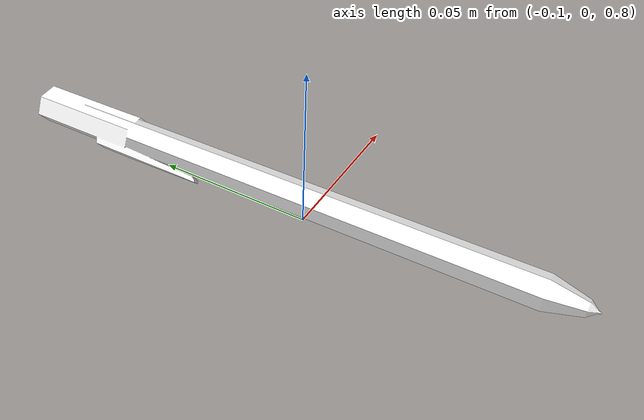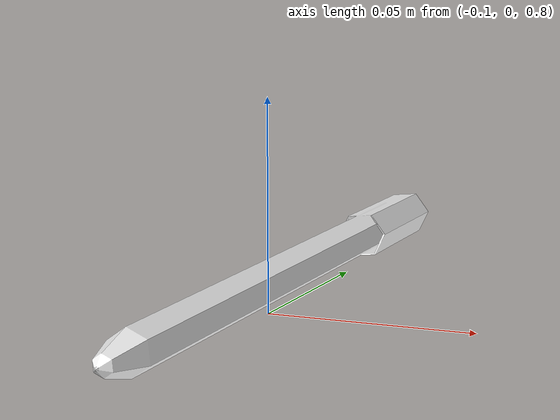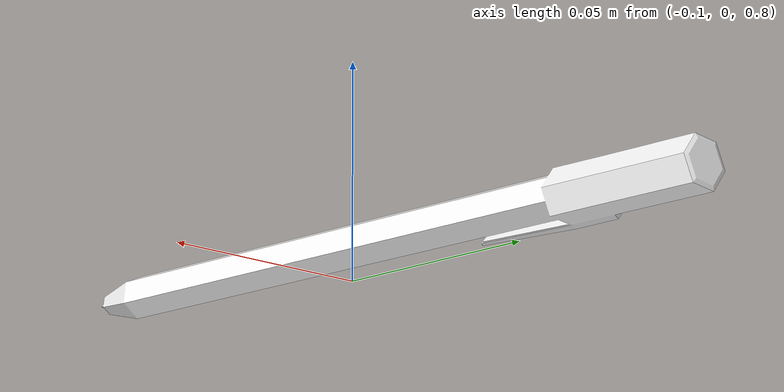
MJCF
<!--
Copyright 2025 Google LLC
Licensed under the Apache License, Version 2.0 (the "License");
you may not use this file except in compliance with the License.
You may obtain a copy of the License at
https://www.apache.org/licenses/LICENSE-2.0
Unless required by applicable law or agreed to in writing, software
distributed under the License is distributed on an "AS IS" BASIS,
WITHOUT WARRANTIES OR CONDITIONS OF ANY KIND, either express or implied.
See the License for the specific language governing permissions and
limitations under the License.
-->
<mujoco model="writing_pens">

  <asset>
    <mesh file="/home/bfl3/bfl_works/new_lerobot/lerobot/src/lerobot/simulation/assets/edr/pen/meshes/textured.obj" scale = "1.5 1 1.5"/>
    <mesh file="/home/bfl3/bfl_works/new_lerobot/lerobot/src/lerobot/simulation/assets/edr/pen/meshes/coacd_part_000.obj" scale = "1.5 1 1.5"/>
  </asset>

  <default>
    <default class="writing_pens">
      <default class="visual_writing_pens">
        <geom type="mesh" group="2" density="200" contype="0" conaffinity="0"/>
      </default>
      <default class="collision_writing_pens">
        <geom type="mesh" group="3" mass="0" density="0" solref=".004 1" friction="1.0 0.01 0.01" condim="6"/>
      </default>
    </default>
  </default>

  <worldbody>
    <body  childclass="writing_pens" pos="-0.1 0 0.8">
      <freejoint/>
      <geom class="visual_writing_pens" rgba="1 1 1 1" mesh="textured"/>
      <geom class="collision_writing_pens" mesh="coacd_part_000"/>
    </body>
  </worldbody>
</mujoco>
